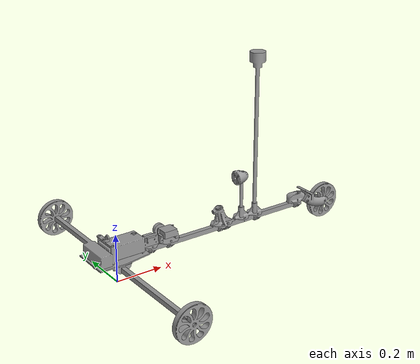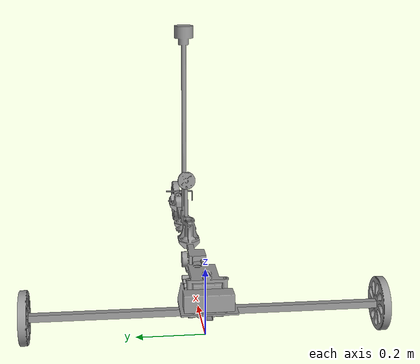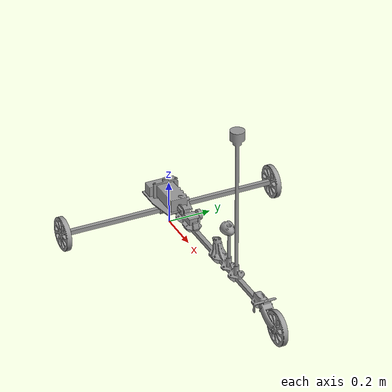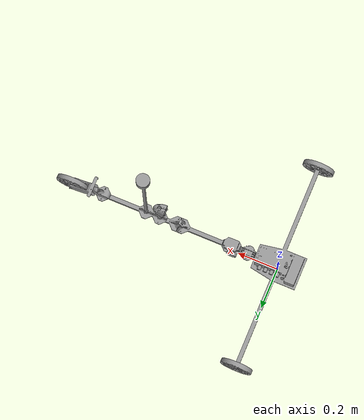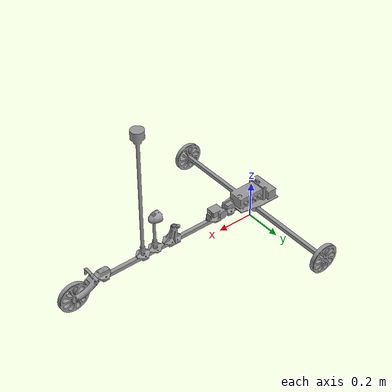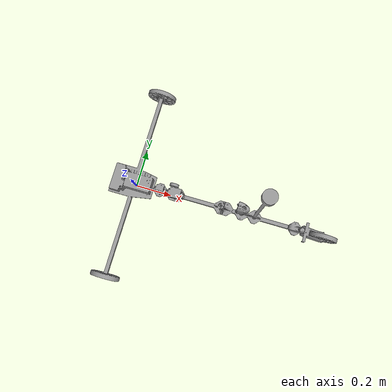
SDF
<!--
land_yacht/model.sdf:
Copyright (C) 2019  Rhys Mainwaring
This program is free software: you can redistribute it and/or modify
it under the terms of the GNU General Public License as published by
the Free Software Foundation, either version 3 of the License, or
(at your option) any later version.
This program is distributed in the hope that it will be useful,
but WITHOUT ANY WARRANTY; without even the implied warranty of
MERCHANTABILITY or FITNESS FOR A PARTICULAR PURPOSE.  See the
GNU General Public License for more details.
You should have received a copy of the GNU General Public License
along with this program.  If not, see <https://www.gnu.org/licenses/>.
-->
<sdf version="1.7">
 <world name="mcmillan_airfield_world">
  <scene>
   <ambient>0.4 0.4 0.4 1</ambient>
   <background>0.7 0.7 0.7 1</background>
   <shadows>1</shadows>
   <sky>
    <time>10</time>
    <sunrise>5</sunrise>
    <sunset>21</sunset>
    <clouds><speed>12</speed><direction>1.57079</direction></clouds>
   </sky>
   <grid>1</grid>
   <origin_visual>1</origin_visual>
  </scene>
  <include><uri>model://sun</uri></include>
  <spherical_coordinates>
   <surface_model>EARTH_WGS84</surface_model>
   <latitude_deg>35.7191350</latitude_deg>
   <longitude_deg>-120.7679525</longitude_deg>
   <elevation>280.0</elevation>
   <heading_deg>0.0</heading_deg>
  </spherical_coordinates>
  <wind>1.0 0.0 0.0</wind>
  <include><uri>model://land_yacht</uri></include>
 </world>
</sdf>

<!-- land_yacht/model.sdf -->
<sdf version='1.6'>
<model name='land_yacht'>
    <pose>0 0 0.075 0 0 0</pose>
    <static>false</static>

        <!-- MAVLink / port settings -->

        <!-- Sensors -->

        <!-- Control / channels -->

        <!-- Either: direct drive of main sail -->

    <!-- Base -->
    <link name="base_link">
        <!-- Main beam -->
        <visual name="base">
        <geometry>
            <mesh>
                <uri>model://land_yacht/meshes/land_yacht_base.stl</uri>
            </mesh>
        </geometry>
        <material>
            <script>
            <name>Gazebo/Gray</name>
            </script>
        </material>
        </visual>

        <visual name="steering_visual">
            <pose>0.89 0 0 0 0 0</pose>
            <geometry>
                <mesh>
                    <uri>model://land_yacht/meshes/steering_assembly_v3.stl</uri>
                </mesh>
            </geometry>
            <material>
                <script>
                <name>Gazebo/Gray</name>
                </script>
            </material>
        </visual>

        <visual name="motor_visual">
            <pose>0.57 0 0.22 0 0 0</pose>
            <geometry>
                <mesh>
                    <uri>model://land_yacht/meshes/motor_mount_v2.stl</uri>
                </mesh>
            </geometry>
            <material>
                <script>
                <name>Gazebo/Gray</name>
                </script>
            </material>
        </visual>

        <!-- Main beam -->
        <collision name="main_beam_collision">
            <pose>0.4 0 0.025 0 0 0</pose>
            <geometry>
                <box>
                <size>1.0 0.020 0.020</size>
                </box>
            </geometry>
        </collision>

        <!-- Cross beam -->
        <collision name="cross_beam_collision">
            <pose>0 0 0 0 0 0</pose>
            <geometry>
                <box>
                <size>0.020 1.0 0.020</size>
                </box>
            </geometry>
        </collision>

        <visual name="imu_visual">
            <pose>0.05 0 0.06 0 0 0</pose>
            <geometry>
                <box>
                    <size>0.06 0.04 0.01</size>
                </box>
            </geometry>
            <material>
                <script>
                    <name>Gazebo/Green</name>
                </script>
            </material>
        </visual>

        <sensor name='imu_sensor' type='imu'>
            <pose>0.05 0 0.06 3.141593 0 0</pose>
            <always_on>1</always_on>
            <update_rate>1000</update_rate>
            <visualize>1</visualize>
            <topic>sensors/imu</topic>
            <imu>
                <topic>sensors/imu</topic>
                <angular_velocity/>
                <linear_acceleration/>
            </imu>
        </sensor>

        <inertial>
        <pose>0.15 0 0.04 0 0 0</pose>
        <mass>3.544</mass>
        <inertia>
            <ixx>0.008623733</ixx>
            <ixy>0</ixy>
            <iyy>0.019521533</iyy>
            <iyz>0</iyz>
            <izz>0.026018867</izz>
        </inertia>
        </inertial>
    </link>

    <!-- Right wheel -->
    <link name="right_wheel_link">
        <pose>0 -0.512 0 1.570796327 0 0</pose>
        <visual name="right_wheel_visual">
            <geometry>
                <mesh>
                    <uri>model://land_yacht/meshes/sand_wheel.stl</uri>
                </mesh>
            </geometry>
            <material>
                <script>
                    <name>Gazebo/Gray</name>
                </script>
            </material>
        </visual>
        <collision name="right_wheel_collision">
            <geometry>
                <cylinder>
                    <radius>0.0750</radius>
                    <length>0.0235</length>
                </cylinder>
            </geometry>
        </collision>
        <inertial>
            <mass>0.112</mass>
            <inertia>
                <ixx>0.000162654</ixx>
                <ixy>0</ixy>
                <iyy>0.000162654</iyy>
                <iyz>0</iyz>
                <izz>0.000315</izz>
            </inertia>
        </inertial>
    </link>

    <joint type="revolute" name="right_wheel_joint">
        <pose>0 0 0 0 0 0</pose>
        <child>right_wheel_link</child>
        <parent>base_link</parent>
        <axis>
            <xyz>0 0 1</xyz>
        </axis>
    </joint>

    <!-- Left wheel -->
    <link name="left_wheel_link">
        <pose>0 0.512 0 1.570796327 0 0</pose>
        <visual name="left_wheel_visual">
            <geometry>
                <mesh>
                    <uri>model://land_yacht/meshes/sand_wheel.stl</uri>
                </mesh>
            </geometry>
            <material>
                <script>
                    <name>Gazebo/Gray</name>
                </script>
            </material>
        </visual>
        <collision name="left_wheel_collision">
            <geometry>
                <cylinder>
                    <radius>0.0750</radius>
                    <length>0.0235</length>
                </cylinder>
            </geometry>
        </collision>
        <inertial>
            <mass>0.112</mass>
            <inertia>
                <ixx>0.000162654</ixx>
                <ixy>0</ixy>
                <iyy>0.000162654</iyy>
                <iyz>0</iyz>
                <izz>0.000315</izz>
            </inertia>
        </inertial>
    </link>

    <joint type="revolute" name="left_wheel_joint">
        <pose>0 0 0 0 0 0</pose>
        <child>left_wheel_link</child>
        <parent>base_link</parent>
        <axis>
            <xyz>0 0 1</xyz>
        </axis>
    </joint>

    <!-- Steering unit -->
    <link name="steering_link">
      <pose>1.05 0 0 0 0 0</pose>

      <visual name="steering_visual">
        <pose>0 0 0 0 0 0</pose>
        <geometry>
            <mesh>
                <uri>model://land_yacht/meshes/land_yacht_forks_v4.stl</uri>
            </mesh>
        </geometry>
        <material>
          <script>
            <name>Gazebo/Gray</name>
          </script>
        </material>
      </visual>
      <collision name="steering_collision">
        <pose>-0.05 0 0.01 0 0 0</pose>
        <geometry>
          <box>
            <size>0.14 0.05 0.05</size>
          </box>
        </geometry>
      </collision>

      <inertial>
        <pose>-0.05 0 0.01 0 0 0</pose>
        <mass>0.073</mass>
        <inertia>
          <ixx>3.04167E-05</ixx>
          <ixy>0</ixy>
          <iyy>0.000134442</iyy>
          <iyz>0</iyz>
          <izz>0.000134442</izz>
        </inertia>
      </inertial>
    </link>

    <joint type="revolute" name="steering_joint">
        <pose>-0.114 0 0.045 0 0 0</pose>
        <child>steering_link</child>
        <parent>base_link</parent>
        <axis>
            <xyz>-1 0 0.700207538</xyz>
            <limit>
                <lower>-0.8</lower>
                <upper>0.8</upper>
            </limit>
        </axis>
    </joint>

    <!-- Front wheel -->
    <link name="front_wheel_link">
        <pose>1.05 0 0 1.570796327 0 0</pose>
        <visual name="front_wheel_visual">
            <geometry>
                <mesh>
                    <uri>model://land_yacht/meshes/sand_wheel.stl</uri>
                </mesh>
            </geometry>
            <material>
                <script>
                    <name>Gazebo/Gray</name>
                </script>
            </material>
        </visual>
        <collision name="front_wheel_collision">
            <geometry>
                <cylinder>
                    <radius>0.0750</radius>
                    <length>0.0235</length>
                </cylinder>
            </geometry>
        </collision>
        <inertial>
            <mass>0.112</mass>
            <inertia>
                <ixx>0.000162654</ixx>
                <ixy>0</ixy>
                <iyy>0.000162654</iyy>
                <iyz>0</iyz>
                <izz>0.000315</izz>
            </inertia>
        </inertial>
    </link>

    <joint type="revolute" name="front_wheel_joint">
        <pose>0 0 0 0 0 0</pose>
        <child>front_wheel_link</child>
        <parent>steering_link</parent>
        <axis>
            <xyz>0 0 1</xyz>
        </axis>
    </joint>

    <!-- Main sail-->

</model>
</sdf>
